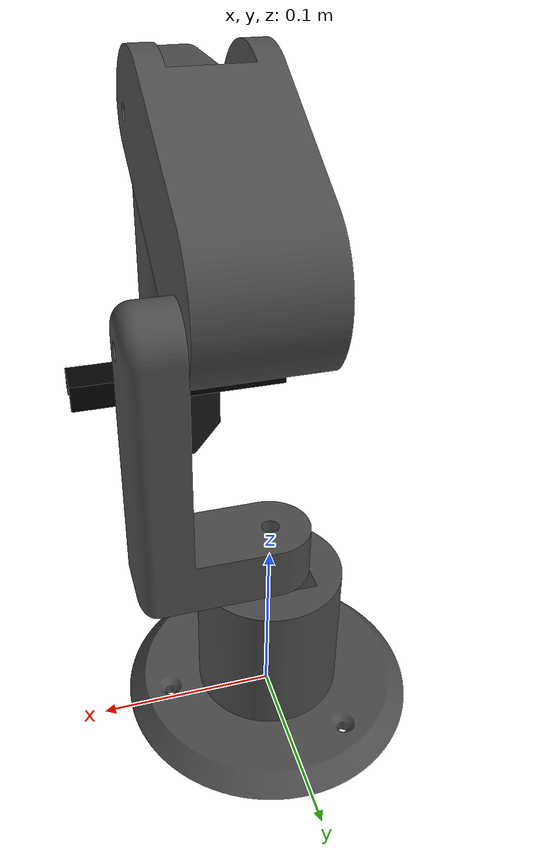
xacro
<?xml version="1.0" ?>

<robot name="robotic" xmlns:xacro="http://www.ros.org/wiki/xacro">

  <xacro:property name="scale" value="0.001 0.001 0.001"/>
  <xacro:property name="file_dir" value="package://robotic_arm"/>

  <material name="silver">
    <color rgba="0.3 0.3 0.3 1.000"/>
  </material>

  <material name="black">
    <color rgba="0.1 0.1 0.1 1.000"/>
  </material>

  <material name="grey">
    <color rgba="0.01 0.01 0.01 1.000"/>
  </material>

  <link name="world"/>

  <link name="base_link">
    <inertial>
      <origin xyz="0.00013823687262010676 -1.287275748997914e-14 0.030999685894238568" rpy="0 0 0"/>
      <mass value="3.85463310643452"/>
      <inertia ixx="0.006744" iyy="0.006727" izz="0.007308" ixy="0.0" iyz="-0.0" ixz="1e-06"/>
    </inertial>
    <visual>
      <origin xyz="0 0 0" rpy="0 0 0"/>
      <geometry>
        <mesh filename="${file_dir}/meshes/base_link.stl" scale="0.001 0.001 0.001"/>
      </geometry>
      <material name="silver"/>
    </visual>
    <collision>
      <origin xyz="0 0 0" rpy="0 0 0"/>
      <geometry>
        <mesh filename="${file_dir}/meshes/base_link.stl" scale="0.001 0.001 0.001"/>
      </geometry>
    </collision>
  </link>

  <link name="linkone_1">
    <inertial>
      <origin xyz="0.0486628984025515 2.0300039683640878e-15 0.06383563728609049" rpy="0 0 0"/>
      <mass value="2.363220430083907"/>
      <inertia ixx="0.006563" iyy="0.007612" izz="0.001802" ixy="-0.0" iyz="-0.0" ixz="-0.001539"/>
    </inertial>
    <visual>
      <origin xyz="-0.0 0.0 -0.09" rpy="0 0 0"/>
      <geometry>
        <mesh filename="${file_dir}/meshes/linkone_1.stl" scale="0.001 0.001 0.001"/>
      </geometry>
      <material name="silver"/>
    </visual>
    <collision>
      <origin xyz="-0.0 0.0 -0.09" rpy="0 0 0"/>
      <geometry>
        <mesh filename="${file_dir}/meshes/linkone_1.stl" scale="0.001 0.001 0.001"/>
      </geometry>
    </collision>
  </link>

  <link name="linktwo_1">
    <inertial>
      <origin xyz="-0.037500000000000144 -0.044246151650264166 0.043397671320847375" rpy="0 0 0"/>
      <mass value="6.122340532641328"/>
      <inertia ixx="0.016208" iyy="0.009234" izz="0.013673" ixy="0.0" iyz="0.005008" ixz="0.0"/>
    </inertial>
    <visual>
      <origin xyz="-0.0475 0.0 -0.24" rpy="0 0 0"/>
      <geometry>
        <mesh filename="${file_dir}/meshes/linktwo_1.stl" scale="0.001 0.001 0.001"/>
      </geometry>
      <material name="silver"/>
    </visual>
    <collision>
      <origin xyz="-0.0475 0.0 -0.24" rpy="0 0 0"/>
      <geometry>
        <mesh filename="${file_dir}/meshes/linktwo_1.stl" scale="0.001 0.001 0.001"/>
      </geometry>
    </collision>
  </link>

  <link name="linkthree_1">
    <inertial>
      <origin xyz="-0.022500000000000166 -0.053128104103918355 -0.050135367274481035" rpy="0 0 0"/>
      <mass value="3.5193373539764488"/>
      <inertia ixx="0.012798" iyy="0.010792" izz="0.00319" ixy="-0.0" iyz="-0.002538" ixz="0.0"/>
    </inertial>
    <visual>
      <origin xyz="-0.033 0.129904 -0.315" rpy="0 0 0"/>
      <geometry>
        <mesh filename="${file_dir}/meshes/linkthree_1.stl" scale="0.001 0.001 0.001"/>
      </geometry>
      <material name="silver"/>
    </visual>
    <collision>
      <origin xyz="-0.033 0.129904 -0.315" rpy="0 0 0"/>
      <geometry>
        <mesh filename="${file_dir}/meshes/linkthree_1.stl" scale="0.001 0.001 0.001"/>
      </geometry>
    </collision>
  </link>

  <link name="end_effector_1">
    <inertial>
      <origin xyz="-0.010000000000000179 1.8935329859637307e-07 -0.038706393001661066" rpy="0 0 0"/>
      <mass value="0.71040762907869"/>
      <inertia ixx="0.000248" iyy="0.001263" izz="0.001142" ixy="0.0" iyz="-0.0" ixz="0.0"/>
    </inertial>
    <visual>
      <origin xyz="-0.0205 0.197404 -0.1575" rpy="0 0 0"/>
      <geometry>
        <mesh filename="${file_dir}/meshes/end_effector_1.stl" scale="0.001 0.001 0.001"/>
      </geometry>
      <material name="grey"/>
    </visual>
    <collision>
      <origin xyz="-0.0205 0.197404 -0.1575" rpy="0 0 0"/>
      <geometry>
        <mesh filename="${file_dir}/meshes/end_effector_1.stl" scale="0.001 0.001 0.001"/>
      </geometry>
    </collision>
  </link>

  <link name="gripper_right_1">
    <inertial>
      <origin xyz="-0.006927083333333459 1.8965585155128473e-07 -0.03044270848234537" rpy="0 0 0"/>
      <mass value="0.2512"/>
      <inertia ixx="7.9e-05" iyy="8.7e-05" izz="2.5e-05" ixy="0.0" iyz="0.0" ixz="-4e-06"/>
    </inertial>
    <visual>
      <origin xyz="-0.0905 0.197404 -0.1075" rpy="0 0 0"/>
      <geometry>
        <mesh filename="${file_dir}/meshes/gripper_right_1.stl" scale="0.001 0.001 0.001"/>
      </geometry>
      <material name="black"/>
    </visual>
    <collision>
      <origin xyz="-0.0905 0.197404 -0.1075" rpy="0 0 0"/>
      <geometry>
        <mesh filename="${file_dir}/meshes/gripper_right_1.stl" scale="0.001 0.001 0.001"/>
      </geometry>
    </collision>
  </link>

  <link name="gripper_left_1">
    <inertial>
      <origin xyz="0.006927083333333153 1.8965585160679588e-07 -0.030442708482345426" rpy="0 0 0"/>
      <mass value="0.2512"/>
      <inertia ixx="7.9e-05" iyy="8.7e-05" izz="2.5e-05" ixy="0.0" iyz="-0.0" ixz="4e-06"/>
    </inertial>
    <visual>
      <origin xyz="0.0695 0.197404 -0.1075" rpy="0 0 0"/>
      <geometry>
        <mesh filename="${file_dir}/meshes/gripper_left_1.stl" scale="0.001 0.001 0.001"/>
      </geometry>
      <material name="black"/>
    </visual>
    <collision>
      <origin xyz="0.0695 0.197404 -0.1075" rpy="0 0 0"/>
      <geometry>
        <mesh filename="${file_dir}/meshes/gripper_left_1.stl" scale="0.001 0.001 0.001"/>
      </geometry>
    </collision>
  </link>

  <joint name="world_base_joint" type="fixed">
    <origin xyz="0.0 0.0 0.0" rpy="0.0 0.0 0.0"/>
    <parent link="world"/>
    <child link="base_link"/>
  </joint>

  <joint name="Revolute_1" type="continuous">
    <origin xyz="0.0 0.0 0.09" rpy="0 0 0"/>
    <parent link="base_link"/>
    <child link="linkone_1"/>
    <axis xyz="0.0 0.0 -1.0"/>
  </joint>

  <joint name="Revolute_2" type="revolute">
    <origin xyz="0.0475 0.0 0.15" rpy="0 0 0"/>
    <parent link="linkone_1"/>
    <child link="linktwo_1"/>
    <axis xyz="-1.0 0.0 0.0"/>
    <limit upper="1.07" lower="-0.39" effort="100" velocity="100"/>
  </joint>

  <joint name="Revolute_3" type="revolute">
    <origin xyz="-0.0145 -0.129904 0.075" rpy="0 0 0"/>
    <parent link="linktwo_1"/>
    <child link="linkthree_1"/>
    <axis xyz="-1.0 0.0 0.0"/>
    <limit upper="1.57" lower="-0.1" effort="100" velocity="100"/>
  </joint>

  <joint name="Revolute_4" type="revolute">
    <origin xyz="-0.0125 -0.0675 -0.1575" rpy="0 0 0"/>
    <parent link="linkthree_1"/>
    <child link="end_effector_1"/>
    <axis xyz="-1.0 0.0 0.0"/>
    <limit upper="1.57" lower="-0.55" effort="100" velocity="100"/>
  </joint>

  <joint name="Slider_1" type="prismatic">
    <origin xyz="0.01 0.0 -0.05" rpy="0 0 0"/>
    <parent link="end_effector_1"/>
    <child link="gripper_right_1"/>
    <axis xyz="1.0 0.0 0.0"/>
    <limit upper="0.07" lower="0.00" effort="40" velocity="5"/>
  </joint>

  <joint name="Slider_2" type="prismatic">
    <origin xyz="-0.03 0.0 -0.05" rpy="0 0 0"/>
    <parent link="end_effector_1"/>
    <child link="gripper_left_1"/>
    <axis xyz="-1.0 0.0 0.0"/>
    <limit upper="0.07" lower="0.00" effort="40" velocity="5"/>
    <mimic joint="Slider_1"/>
  </joint>

  <gazebo>
    <plugin
      filename="libgz_ros2_control-system.so"
      name="gz_ros2_control::GazeboSimROS2ControlPlugin">
      <parameters>$(find robotic_arm)/config/controllers.yaml</parameters>
    </plugin>
  </gazebo>

  <gazebo reference="gripper_right_1">
    <mu1>0.05</mu1>
    <mu2>0.05</mu2>
  </gazebo>

  <gazebo reference="gripper_left_1">
    <mu1>0.05</mu1>
    <mu2>0.05</mu2>
  </gazebo>

  <ros2_control name="GazeboSystem" type="system">
    <hardware>
      <plugin>gz_ros2_control/GazeboSimSystem</plugin>
    </hardware>

    <joint name="Revolute_1">
      <command_interface name="position"/>
      <state_interface name="position"/>
      <state_interface name="velocity"/>
    </joint>

    <joint name="Revolute_2">
      <command_interface name="position"/>
      <state_interface name="position"/>
      <state_interface name="velocity"/>
    </joint>

    <joint name="Revolute_3">
      <command_interface name="position"/>
      <state_interface name="position"/>
      <state_interface name="velocity"/>
    </joint>

    <joint name="Revolute_4">
      <command_interface name="position"/>
      <state_interface name="position"/>
      <state_interface name="velocity"/>
    </joint>

    <joint name="Slider_1">
      <command_interface name="position"/>
      <state_interface name="position">
        <param name="initial_value">0.06</param>
      </state_interface>
      <state_interface name="velocity"/>
      <state_interface name="effort"/>
    </joint>

  </ros2_control>
</robot>
